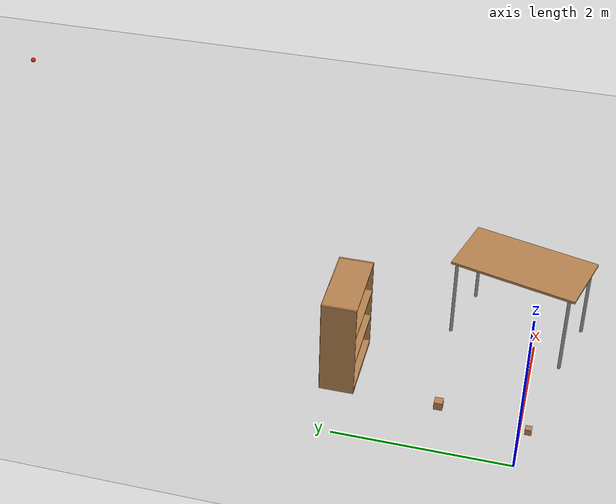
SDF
<sdf version="1.7">
 <world name="default">
  <light name="sun" type="directional">
   <pose>0 0 10 0 -0 0</pose>
   <diffuse>0.8 0.8 0.8 1</diffuse>
   <specular>0.2 0.2 0.2 1</specular>
   <attenuation>
    <range>1000</range>
    <constant>0.9</constant>
    <linear>0.01</linear>
    <quadratic>0.001</quadratic>
   </attenuation>
   <direction>-0.5 0.1 -0.9</direction>
   <spot><inner_angle>0</inner_angle><outer_angle>0</outer_angle><falloff>0</falloff></spot>
  </light>
  <model name="ground_plane">
   <static>1</static>
   <link name="link">
    <collision name="collision">
     <geometry><plane><normal>0 0 1</normal><size>100 100</size></plane></geometry>
     <surface><friction><ode><mu>100</mu><mu2>50</mu2></ode></friction></surface>
    </collision>
    <visual name="visual">
     <cast_shadows>0</cast_shadows>
     <geometry><plane><normal>0 0 1</normal><size>100 100</size></plane></geometry>
     <material>
      <script><uri>file://media/materials/scripts/gazebo.material</uri><name>Gazebo/Grey</name></script>
     </material>
    </visual>
   </link>
  </model>
  <gravity>0 0 -9.8</gravity>
  <magnetic_field>6e-06 2.3e-05 -4.2e-05</magnetic_field>
  <atmosphere type="adiabatic"/>
  <physics type="ode">
   <max_step_size>0.001</max_step_size>
   <real_time_factor>1</real_time_factor>
   <real_time_update_rate>1000</real_time_update_rate>
  </physics>
  <scene><ambient>0.4 0.4 0.4 1</ambient><background>0.7 0.7 0.7 1</background><shadows>1</shadows></scene>
  <audio><device>default</device></audio>
  <spherical_coordinates>
   <surface_model>EARTH_WGS84</surface_model>
   <latitude_deg>0</latitude_deg>
   <longitude_deg>0</longitude_deg>
   <elevation>0</elevation>
   <heading_deg>0</heading_deg>
  </spherical_coordinates>
  <model name="cricket_ball">
   <link name="link">
    <pose>0 0 0.0375 0 -0 0</pose>
    <inertial>
     <mass>0.1467</mass>
     <inertia>
      <ixx>8.25187e-05</ixx>
      <ixy>0</ixy>
      <ixz>0</ixz>
      <iyy>8.25187e-05</iyy>
      <iyz>0</iyz>
      <izz>8.25187e-05</izz>
     </inertia>
    </inertial>
    <collision name="collision">
     <geometry><sphere><radius>0.0375</radius></sphere></geometry>
     <surface>
      <contact>
       <poissons_ratio>0.347</poissons_ratio>
       <elastic_modulus>8.8e+09</elastic_modulus>
       <ode><kp>100000</kp><kd>100</kd><max_vel>100</max_vel><min_depth>0.001</min_depth></ode>
      </contact>
      <friction>
       <torsional>
        <coefficient>1</coefficient>
        <use_patch_radius>0</use_patch_radius>
        <surface_radius>0.01</surface_radius>
       </torsional>
      </friction>
     </surface>
    </collision>
    <visual name="visual">
     <geometry><sphere><radius>0.0375</radius></sphere></geometry>
     <material>
      <script><uri>file://media/materials/scripts/gazebo.material</uri><name>Gazebo/Red</name></script>
     </material>
    </visual>
    <velocity_decay><linear>0</linear><angular>0.005</angular></velocity_decay>
   </link>
   <pose>6.95475 8.4988 0.019169 -1.09006 -0.053011 1.44932</pose>
  </model>
  <model name="table">
   <static>1</static>
   <link name="link">
    <collision name="surface">
     <pose>0 0 1 0 -0 0</pose>
     <geometry><box><size>1.5 0.8 0.03</size></box></geometry>
     <surface><friction><ode><mu>0.6</mu><mu2>0.6</mu2></ode></friction></surface>
    </collision>
    <visual name="visual1">
     <pose>0 0 1 0 -0 0</pose>
     <geometry><box><size>1.5 0.8 0.03</size></box></geometry>
     <material>
      <script><uri>file://media/materials/scripts/gazebo.material</uri><name>Gazebo/Wood</name></script>
     </material>
    </visual>
    <collision name="front_left_leg">
     <pose>0.68 0.38 0.5 0 -0 0</pose>
     <geometry><cylinder><radius>0.02</radius><length>1</length></cylinder></geometry>
    </collision>
    <visual name="front_left_leg">
     <pose>0.68 0.38 0.5 0 -0 0</pose>
     <geometry><cylinder><radius>0.02</radius><length>1</length></cylinder></geometry>
     <material>
      <script><uri>file://media/materials/scripts/gazebo.material</uri><name>Gazebo/Grey</name></script>
     </material>
    </visual>
    <collision name="front_right_leg">
     <pose>0.68 -0.38 0.5 0 -0 0</pose>
     <geometry><cylinder><radius>0.02</radius><length>1</length></cylinder></geometry>
    </collision>
    <visual name="front_right_leg">
     <pose>0.68 -0.38 0.5 0 -0 0</pose>
     <geometry><cylinder><radius>0.02</radius><length>1</length></cylinder></geometry>
     <material>
      <script><uri>file://media/materials/scripts/gazebo.material</uri><name>Gazebo/Grey</name></script>
     </material>
    </visual>
    <collision name="back_right_leg">
     <pose>-0.68 -0.38 0.5 0 -0 0</pose>
     <geometry><cylinder><radius>0.02</radius><length>1</length></cylinder></geometry>
    </collision>
    <visual name="back_right_leg">
     <pose>-0.68 -0.38 0.5 0 -0 0</pose>
     <geometry><cylinder><radius>0.02</radius><length>1</length></cylinder></geometry>
     <material>
      <script><uri>file://media/materials/scripts/gazebo.material</uri><name>Gazebo/Grey</name></script>
     </material>
    </visual>
    <collision name="back_left_leg">
     <pose>-0.68 0.38 0.5 0 -0 0</pose>
     <geometry><cylinder><radius>0.02</radius><length>1</length></cylinder></geometry>
    </collision>
    <visual name="back_left_leg">
     <pose>-0.68 0.38 0.5 0 -0 0</pose>
     <geometry><cylinder><radius>0.02</radius><length>1</length></cylinder></geometry>
     <material>
      <script><uri>file://media/materials/scripts/gazebo.material</uri><name>Gazebo/Grey</name></script>
     </material>
    </visual>
   </link>
   <pose>2.25581 0.245119 0 0 -0 1.3137</pose>
  </model>
  <model name="wood_cube_10cm">
   <link name="link">
    <pose>0 0 0.05 0 -0 0</pose>
    <inertial>
     <mass>0.5167</mass>
     <inertia>
      <ixx>0.000861167</ixx>
      <ixy>0</ixy>
      <ixz>0</ixz>
      <iyy>0.000861167</iyy>
      <iyz>0</iyz>
      <izz>0.000861167</izz>
     </inertia>
    </inertial>
    <collision name="collision">
     <geometry><box><size>0.1 0.1 0.1</size></box></geometry>
     <surface>
      <contact>
       <poissons_ratio>0.347</poissons_ratio>
       <elastic_modulus>8.8e+09</elastic_modulus>
       <ode><kp>100000</kp><kd>100</kd><max_vel>100</max_vel><min_depth>0.001</min_depth></ode>
      </contact>
      <friction>
       <torsional>
        <coefficient>1</coefficient>
        <use_patch_radius>0</use_patch_radius>
        <surface_radius>0.01</surface_radius>
       </torsional>
      </friction>
     </surface>
    </collision>
    <visual name="visual">
     <geometry><box><size>0.1 0.1 0.1</size></box></geometry>
     <material>
      <script><uri>file://media/materials/scripts/gazebo.material</uri><name>Gazebo/Wood</name></script>
     </material>
    </visual>
   </link>
   <pose>0.697235 0.925996 -0.001013 0 -0 0</pose>
  </model>
  <model name="wood_cube_7_5cm">
   <link name="link">
    <pose>0 0 0.0375 0 -0 0</pose>
    <inertial>
     <mass>0.2249</mass>
     <inertia>
      <ixx>0.000210844</ixx>
      <ixy>0</ixy>
      <ixz>0</ixz>
      <iyy>0.000210844</iyy>
      <iyz>0</iyz>
      <izz>0.000210844</izz>
     </inertia>
    </inertial>
    <collision name="collision">
     <geometry><box><size>0.075 0.075 0.075</size></box></geometry>
     <surface>
      <contact>
       <poissons_ratio>0.347</poissons_ratio>
       <elastic_modulus>8.8e+09</elastic_modulus>
       <ode><kp>100000</kp><kd>100</kd><max_vel>100</max_vel><min_depth>0.001</min_depth></ode>
      </contact>
      <friction>
       <torsional>
        <coefficient>1</coefficient>
        <use_patch_radius>0</use_patch_radius>
        <surface_radius>0.01</surface_radius>
       </torsional>
      </friction>
     </surface>
    </collision>
    <visual name="visual">
     <geometry><box><size>0.075 0.075 0.075</size></box></geometry>
     <material>
      <script><uri>file://media/materials/scripts/gazebo.material</uri><name>Gazebo/Wood</name></script>
     </material>
    </visual>
   </link>
   <pose>0.548076 -0.092986 -0.001005 0 -0 0</pose>
  </model>
  <model name="bookshelf">
   <static>1</static>
   <link name="link">
    <inertial><mass>1</mass></inertial>
    <collision name="back">
     <pose>0 0.005 0.6 0 -0 0</pose>
     <geometry><box><size>0.9 0.01 1.2</size></box></geometry>
    </collision>
    <visual name="visual1">
     <pose>0 0.005 0.6 0 -0 0</pose>
     <geometry><box><size>0.9 0.01 1.2</size></box></geometry>
     <material>
      <script><uri>file://media/materials/scripts/gazebo.material</uri><name>Gazebo/Wood</name></script>
     </material>
    </visual>
    <collision name="left_side">
     <pose>0.45 -0.195 0.6 0 -0 0</pose>
     <geometry><box><size>0.02 0.4 1.2</size></box></geometry>
    </collision>
    <visual name="visual2">
     <pose>0.45 -0.195 0.6 0 -0 0</pose>
     <geometry><box><size>0.02 0.4 1.2</size></box></geometry>
     <material>
      <script><uri>file://media/materials/scripts/gazebo.material</uri><name>Gazebo/Wood</name></script>
     </material>
    </visual>
    <collision name="right_side">
     <pose>-0.45 -0.195 0.6 0 -0 0</pose>
     <geometry><box><size>0.02 0.4 1.2</size></box></geometry>
    </collision>
    <visual name="visual3">
     <pose>-0.45 -0.195 0.6 0 -0 0</pose>
     <geometry><box><size>0.02 0.4 1.2</size></box></geometry>
     <material>
      <script><uri>file://media/materials/scripts/gazebo.material</uri><name>Gazebo/Wood</name></script>
     </material>
    </visual>
    <collision name="bottom">
     <pose>0 -0.195 0.03 0 -0 0</pose>
     <geometry><box><size>0.88 0.4 0.06</size></box></geometry>
    </collision>
    <visual name="visual4">
     <pose>0 -0.195 0.03 0 -0 0</pose>
     <geometry><box><size>0.88 0.4 0.06</size></box></geometry>
     <material>
      <script><uri>file://media/materials/scripts/gazebo.material</uri><name>Gazebo/Wood</name></script>
     </material>
    </visual>
    <collision name="top">
     <pose>0 -0.195 1.19 0 -0 0</pose>
     <geometry><box><size>0.88 0.4 0.02</size></box></geometry>
    </collision>
    <visual name="visual5">
     <pose>0 -0.195 1.19 0 -0 0</pose>
     <geometry><box><size>0.88 0.4 0.02</size></box></geometry>
     <material>
      <script><uri>file://media/materials/scripts/gazebo.material</uri><name>Gazebo/Wood</name></script>
     </material>
    </visual>
    <collision name="low_shelf">
     <pose>0 -0.195 0.43 0 -0 0</pose>
     <geometry><box><size>0.88 0.4 0.02</size></box></geometry>
    </collision>
    <visual name="visual6">
     <pose>0 -0.195 0.43 0 -0 0</pose>
     <geometry><box><size>0.88 0.4 0.02</size></box></geometry>
     <material>
      <script><uri>file://media/materials/scripts/gazebo.material</uri><name>Gazebo/Wood</name></script>
     </material>
    </visual>
    <collision name="high_shelf">
     <pose>0 -0.195 0.8 0 -0 0</pose>
     <geometry><box><size>0.88 0.4 0.02</size></box></geometry>
    </collision>
    <visual name="visual7">
     <pose>0 -0.195 0.8 0 -0 0</pose>
     <geometry><box><size>0.88 0.4 0.02</size></box></geometry>
     <material>
      <script><uri>file://media/materials/scripts/gazebo.material</uri><name>Gazebo/Wood</name></script>
     </material>
    </visual>
   </link>
   <pose>1.11547 2.28722 0 0 -0 0</pose>
  </model>
 </world>
</sdf>
